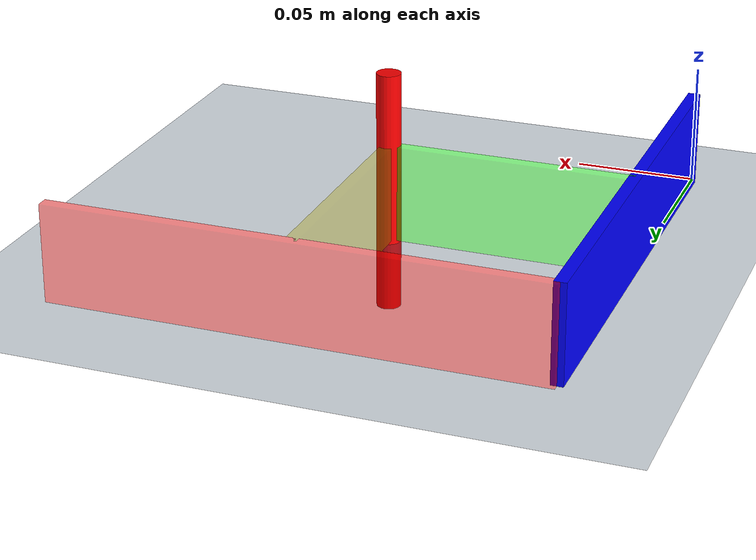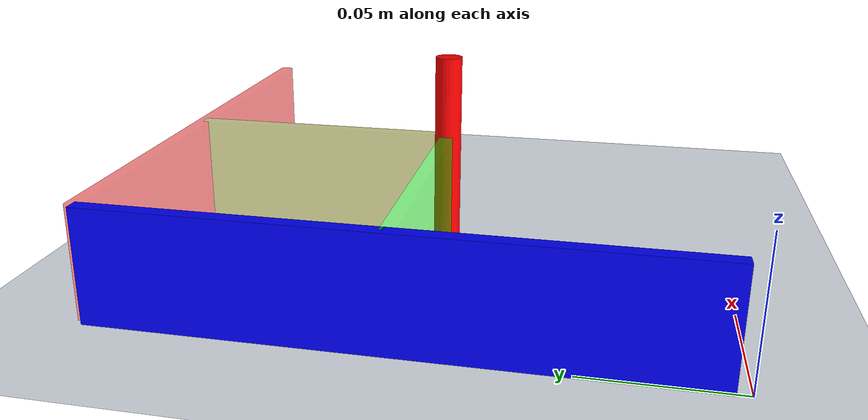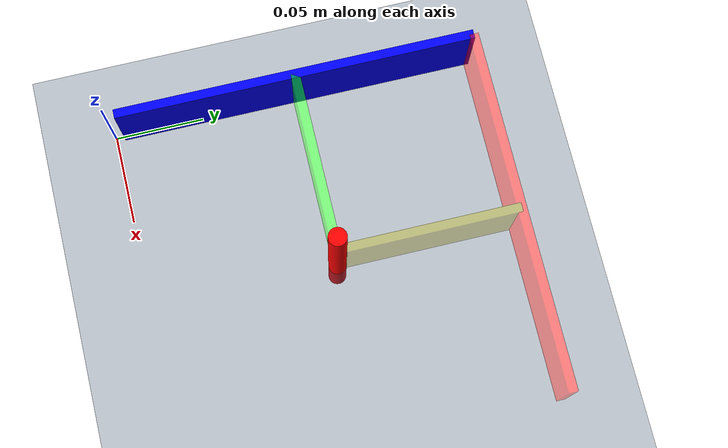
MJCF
<mujoco>
    <visual>
        <headlight diffuse="0.6 0.6 0.6" ambient="0.3 0.3 0.3" specular="0 0 0" />
        <rgba haze="0.15 0.25 0.35 1" />
    </visual>
    <asset>
        <texture type="skybox" builtin="gradient" rgb1="0.3 0.5 0.7" rgb2="0 0 0" width="512" height="3072" />
        <texture type="2d" name="groundplane" builtin="checker" mark="edge" rgb1="0.2 0.3 0.4" rgb2="0.1 0.2 0.3" markrgb="0.8 0.8 0.8" width="300" height="300" />
        <material name="groundplane" texture="groundplane" texuniform="true" texrepeat="5 5" reflectance="0.2" />
        <material name="collision_material" rgba="0 0 0 0" /> <!-- transparent for collision -->
        <material name="visual_material" rgba="0 0 1 0.3" /> <!-- Blue semi-transparent for visual -->
    </asset>

    <worldbody>
        <light pos="0 0 1.5" dir="0 0 -1" directional="true" />
        <geom name="floor" size="0 0 0.05" type="plane" material="groundplane" />
        <body name="blue" pos="0 0.105 0.021">
            <joint pos="0 -0.105 0" name="base_jt" type="hinge" axis="0 0 1" limited="true" range="15 150" springdamper="1 1" />
            <geom type="box" size="0.0025 0.1 0.02" euler="0 0 0" rgba="0 0 1 1" />
            <body name="red" pos="0.1 0.1 0">
                <joint pos="-0.1 0 0" name="long_arm2jt" type="hinge" axis="0 0 1" limited="false" range="-3.14 3.14" />
                <geom type="box" size="0.0025 0.1 0.02" euler="0 0 90" rgba="1 0 0 0.5" />
                <body name="yellow" pos="0 -0.05 0">
                    <joint pos="0 0.05 0" name="cylinder_l4_jt" type="hinge" axis="0 0 1" limited="false" range="-3.14 3.14" />
                    <geom type="box" size="0.0025 0.05 0.02" euler="0 0 0" rgba="0.5 0.5 0 0.5" />
                    <body name="pen" pos="0 -0.05 0">
                        <joint pos="0 0 0" name="cylinder_l3_jt" type="hinge" axis="0 0 1" limited="false" range="-3.14 3.14" />
                        <joint pos="0 0 0" name="slide_jt1" type="slide" axis="1 0 0" limited="true" range="-1 1"/>
                        <joint pos="0 0 0" name="slide_jt2" type="slide" axis="0 1 0" limited="true" range="-1 1"/>
                        <geom type="cylinder" size="0.005 0.05" euler="0 0 0" rgba="1 0 0 1" />
                    </body>
                </body>
            </body>
            <body name="green" pos="0.05 0 0">
                <joint pos="-0.05 0 0" name="l1_jt" type="hinge" axis="0 0 1" limited="true" range="-3.14 3.14" />
                <geom type="box" size="0.0025 0.05 0.02" euler="0 0 90" rgba="0 1 0 0.5" />
            </body>
        </body>
    </worldbody>
    <equality>
        <weld name="blue_green" body1="green" body2="blue" anchor="0 0 0" />
        <weld name="cylinder_yellow" body1="yellow" body2="pen" anchor="0 0 0" />
        <weld name="cylinder_green" body2="pen" body1="green" anchor="0 0 0" solref="0.0001 1"/>
    </equality>
    <actuator>
        <position name="x_actuator" joint="slide_jt1" kp="30"/>
        <position name="y_actuator" joint="slide_jt2" kp="30"/>
    </actuator>

</mujoco>
